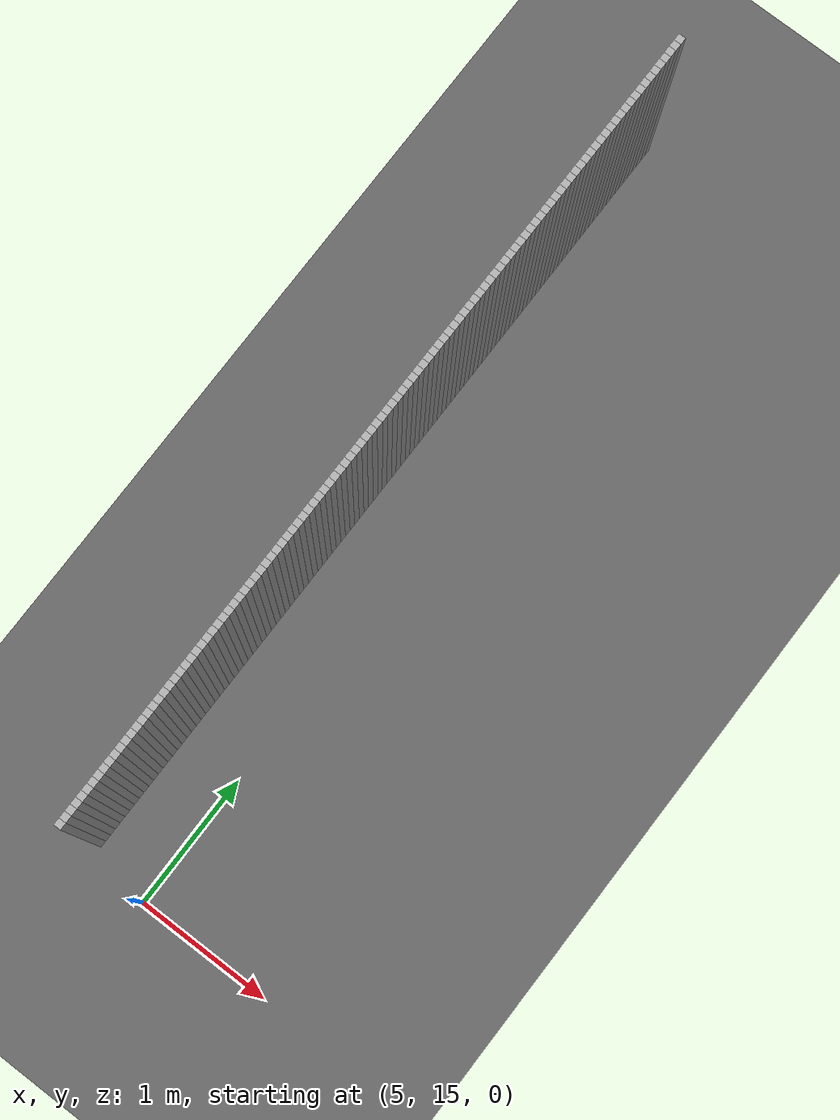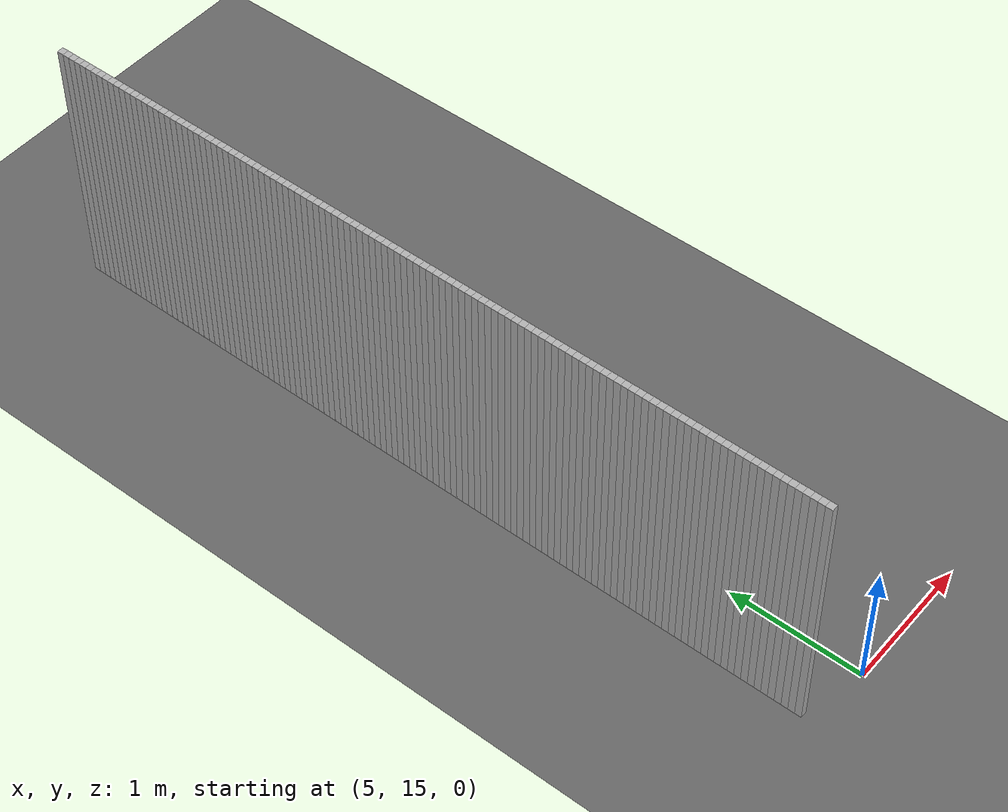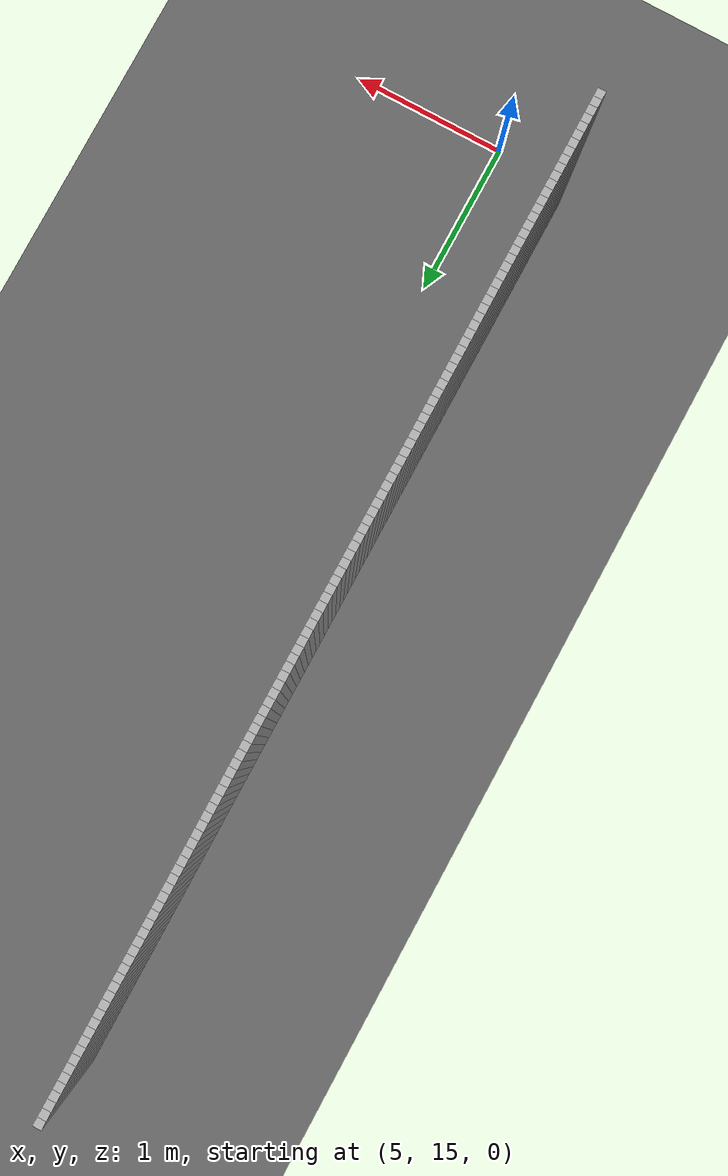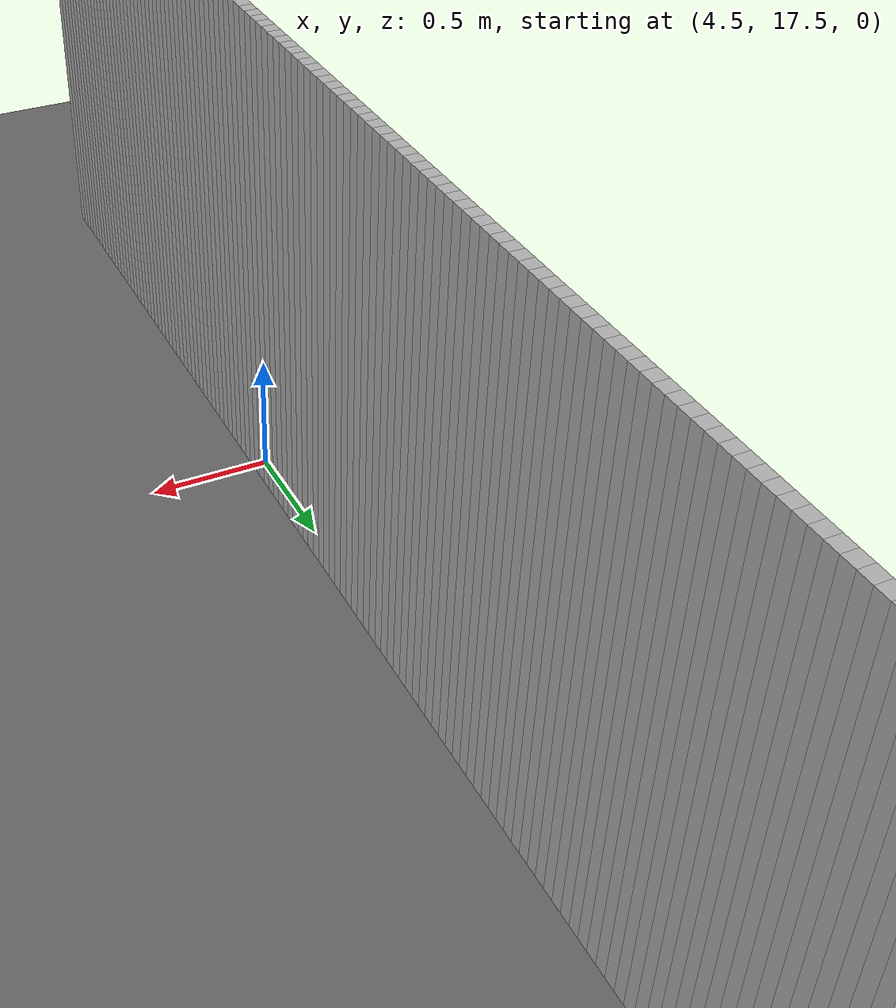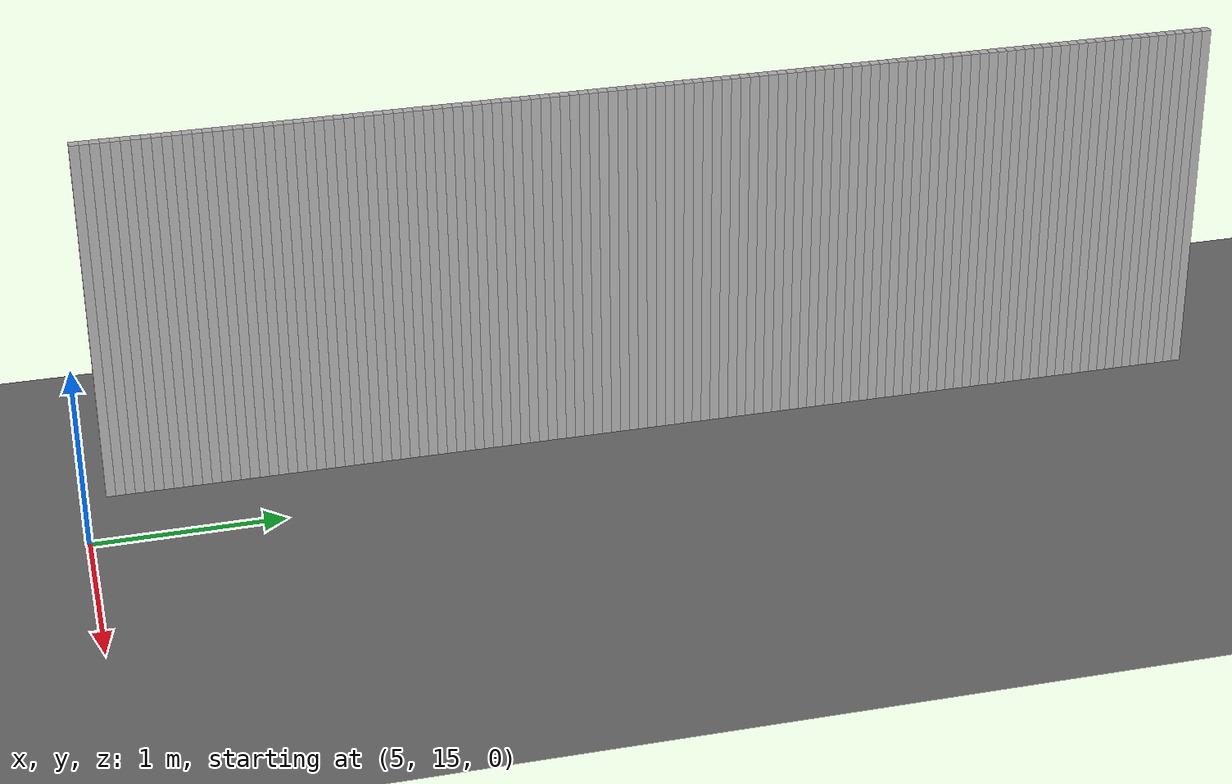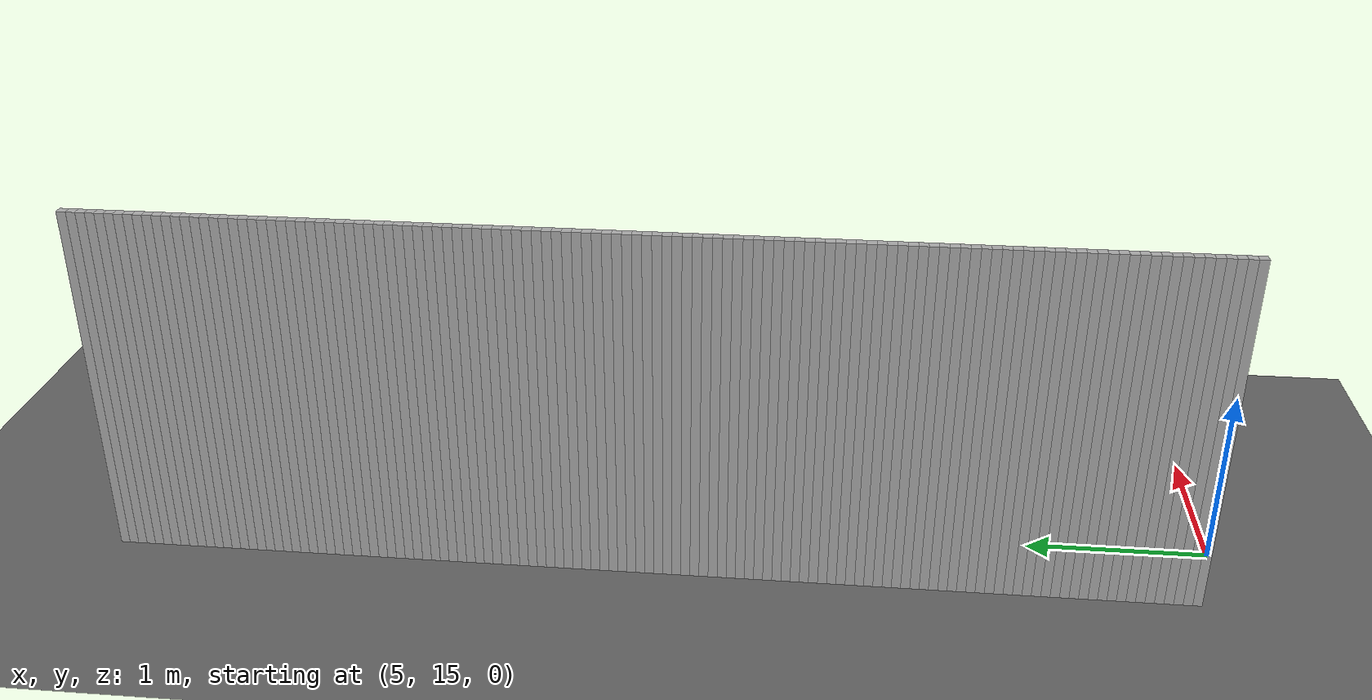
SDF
<sdf version="1.8">
 <world name="real_map">
  <model name="ground">
   <static>true</static>
   <link name="l">
    <collision name="c"><geometry><plane><normal>0 0 1</normal><size>100 100</size></plane></geometry></collision>
    <visual name="v">
     <geometry><plane><normal>0 0 1</normal><size>100 100</size></plane></geometry>
     <material><ambient>0.3 0.3 0.3 1</ambient><diffuse>0.4 0.4 0.4 1</diffuse></material>
    </visual>
   </link>
  </model>
  <model name="walls">
   <static>true</static>
   <link name="w2">
    <pose>4.534 21.092 1.000 0 0 0</pose>
    <collision name="c"><geometry><box><size>0.050 0.050 2.000</size></box></geometry></collision>
    <visual name="v">
     <geometry><box><size>0.050 0.050 2.000</size></box></geometry>
     <material><ambient>0.7 0.7 0.7 1</ambient><diffuse>0.7 0.7 0.7 1</diffuse></material>
    </visual>
   </link>
   <link name="w4">
    <pose>4.534 21.042 1.000 0 0 0</pose>
    <collision name="c"><geometry><box><size>0.050 0.050 2.000</size></box></geometry></collision>
    <visual name="v">
     <geometry><box><size>0.050 0.050 2.000</size></box></geometry>
     <material><ambient>0.7 0.7 0.7 1</ambient><diffuse>0.7 0.7 0.7 1</diffuse></material>
    </visual>
   </link>
   <link name="w6">
    <pose>4.534 20.992 1.000 0 0 0</pose>
    <collision name="c"><geometry><box><size>0.050 0.050 2.000</size></box></geometry></collision>
    <visual name="v">
     <geometry><box><size>0.050 0.050 2.000</size></box></geometry>
     <material><ambient>0.7 0.7 0.7 1</ambient><diffuse>0.7 0.7 0.7 1</diffuse></material>
    </visual>
   </link>
   <link name="w8">
    <pose>4.534 20.942 1.000 0 0 0</pose>
    <collision name="c"><geometry><box><size>0.050 0.050 2.000</size></box></geometry></collision>
    <visual name="v">
     <geometry><box><size>0.050 0.050 2.000</size></box></geometry>
     <material><ambient>0.7 0.7 0.7 1</ambient><diffuse>0.7 0.7 0.7 1</diffuse></material>
    </visual>
   </link>
   <link name="w10">
    <pose>4.534 20.892 1.000 0 0 0</pose>
    <collision name="c"><geometry><box><size>0.050 0.050 2.000</size></box></geometry></collision>
    <visual name="v">
     <geometry><box><size>0.050 0.050 2.000</size></box></geometry>
     <material><ambient>0.7 0.7 0.7 1</ambient><diffuse>0.7 0.7 0.7 1</diffuse></material>
    </visual>
   </link>
   <link name="w12">
    <pose>4.534 20.842 1.000 0 0 0</pose>
    <collision name="c"><geometry><box><size>0.050 0.050 2.000</size></box></geometry></collision>
    <visual name="v">
     <geometry><box><size>0.050 0.050 2.000</size></box></geometry>
     <material><ambient>0.7 0.7 0.7 1</ambient><diffuse>0.7 0.7 0.7 1</diffuse></material>
    </visual>
   </link>
   <link name="w14">
    <pose>4.534 20.792 1.000 0 0 0</pose>
    <collision name="c"><geometry><box><size>0.050 0.050 2.000</size></box></geometry></collision>
    <visual name="v">
     <geometry><box><size>0.050 0.050 2.000</size></box></geometry>
     <material><ambient>0.7 0.7 0.7 1</ambient><diffuse>0.7 0.7 0.7 1</diffuse></material>
    </visual>
   </link>
   <link name="w16">
    <pose>4.534 20.742 1.000 0 0 0</pose>
    <collision name="c"><geometry><box><size>0.050 0.050 2.000</size></box></geometry></collision>
    <visual name="v">
     <geometry><box><size>0.050 0.050 2.000</size></box></geometry>
     <material><ambient>0.7 0.7 0.7 1</ambient><diffuse>0.7 0.7 0.7 1</diffuse></material>
    </visual>
   </link>
   <link name="w18">
    <pose>4.534 20.692 1.000 0 0 0</pose>
    <collision name="c"><geometry><box><size>0.050 0.050 2.000</size></box></geometry></collision>
    <visual name="v">
     <geometry><box><size>0.050 0.050 2.000</size></box></geometry>
     <material><ambient>0.7 0.7 0.7 1</ambient><diffuse>0.7 0.7 0.7 1</diffuse></material>
    </visual>
   </link>
   <link name="w20">
    <pose>4.534 20.642 1.000 0 0 0</pose>
    <collision name="c"><geometry><box><size>0.050 0.050 2.000</size></box></geometry></collision>
    <visual name="v">
     <geometry><box><size>0.050 0.050 2.000</size></box></geometry>
     <material><ambient>0.7 0.7 0.7 1</ambient><diffuse>0.7 0.7 0.7 1</diffuse></material>
    </visual>
   </link>
   <link name="w22">
    <pose>4.534 20.592 1.000 0 0 0</pose>
    <collision name="c"><geometry><box><size>0.050 0.050 2.000</size></box></geometry></collision>
    <visual name="v">
     <geometry><box><size>0.050 0.050 2.000</size></box></geometry>
     <material><ambient>0.7 0.7 0.7 1</ambient><diffuse>0.7 0.7 0.7 1</diffuse></material>
    </visual>
   </link>
   <link name="w24">
    <pose>4.534 20.542 1.000 0 0 0</pose>
    <collision name="c"><geometry><box><size>0.050 0.050 2.000</size></box></geometry></collision>
    <visual name="v">
     <geometry><box><size>0.050 0.050 2.000</size></box></geometry>
     <material><ambient>0.7 0.7 0.7 1</ambient><diffuse>0.7 0.7 0.7 1</diffuse></material>
    </visual>
   </link>
   <link name="w26">
    <pose>4.534 20.492 1.000 0 0 0</pose>
    <collision name="c"><geometry><box><size>0.050 0.050 2.000</size></box></geometry></collision>
    <visual name="v">
     <geometry><box><size>0.050 0.050 2.000</size></box></geometry>
     <material><ambient>0.7 0.7 0.7 1</ambient><diffuse>0.7 0.7 0.7 1</diffuse></material>
    </visual>
   </link>
   <link name="w28">
    <pose>4.534 20.442 1.000 0 0 0</pose>
    <collision name="c"><geometry><box><size>0.050 0.050 2.000</size></box></geometry></collision>
    <visual name="v">
     <geometry><box><size>0.050 0.050 2.000</size></box></geometry>
     <material><ambient>0.7 0.7 0.7 1</ambient><diffuse>0.7 0.7 0.7 1</diffuse></material>
    </visual>
   </link>
   <link name="w30">
    <pose>4.534 20.392 1.000 0 0 0</pose>
    <collision name="c"><geometry><box><size>0.050 0.050 2.000</size></box></geometry></collision>
    <visual name="v">
     <geometry><box><size>0.050 0.050 2.000</size></box></geometry>
     <material><ambient>0.7 0.7 0.7 1</ambient><diffuse>0.7 0.7 0.7 1</diffuse></material>
    </visual>
   </link>
   <link name="w32">
    <pose>4.534 20.342 1.000 0 0 0</pose>
    <collision name="c"><geometry><box><size>0.050 0.050 2.000</size></box></geometry></collision>
    <visual name="v">
     <geometry><box><size>0.050 0.050 2.000</size></box></geometry>
     <material><ambient>0.7 0.7 0.7 1</ambient><diffuse>0.7 0.7 0.7 1</diffuse></material>
    </visual>
   </link>
   <link name="w34">
    <pose>4.534 20.292 1.000 0 0 0</pose>
    <collision name="c"><geometry><box><size>0.050 0.050 2.000</size></box></geometry></collision>
    <visual name="v">
     <geometry><box><size>0.050 0.050 2.000</size></box></geometry>
     <material><ambient>0.7 0.7 0.7 1</ambient><diffuse>0.7 0.7 0.7 1</diffuse></material>
    </visual>
   </link>
   <link name="w36">
    <pose>4.534 20.242 1.000 0 0 0</pose>
    <collision name="c"><geometry><box><size>0.050 0.050 2.000</size></box></geometry></collision>
    <visual name="v">
     <geometry><box><size>0.050 0.050 2.000</size></box></geometry>
     <material><ambient>0.7 0.7 0.7 1</ambient><diffuse>0.7 0.7 0.7 1</diffuse></material>
    </visual>
   </link>
   <link name="w38">
    <pose>4.534 20.192 1.000 0 0 0</pose>
    <collision name="c"><geometry><box><size>0.050 0.050 2.000</size></box></geometry></collision>
    <visual name="v">
     <geometry><box><size>0.050 0.050 2.000</size></box></geometry>
     <material><ambient>0.7 0.7 0.7 1</ambient><diffuse>0.7 0.7 0.7 1</diffuse></material>
    </visual>
   </link>
   <link name="w40">
    <pose>4.534 20.142 1.000 0 0 0</pose>
    <collision name="c"><geometry><box><size>0.050 0.050 2.000</size></box></geometry></collision>
    <visual name="v">
     <geometry><box><size>0.050 0.050 2.000</size></box></geometry>
     <material><ambient>0.7 0.7 0.7 1</ambient><diffuse>0.7 0.7 0.7 1</diffuse></material>
    </visual>
   </link>
   <link name="w42">
    <pose>4.534 20.092 1.000 0 0 0</pose>
    <collision name="c"><geometry><box><size>0.050 0.050 2.000</size></box></geometry></collision>
    <visual name="v">
     <geometry><box><size>0.050 0.050 2.000</size></box></geometry>
     <material><ambient>0.7 0.7 0.7 1</ambient><diffuse>0.7 0.7 0.7 1</diffuse></material>
    </visual>
   </link>
   <link name="w44">
    <pose>4.534 20.042 1.000 0 0 0</pose>
    <collision name="c"><geometry><box><size>0.050 0.050 2.000</size></box></geometry></collision>
    <visual name="v">
     <geometry><box><size>0.050 0.050 2.000</size></box></geometry>
     <material><ambient>0.7 0.7 0.7 1</ambient><diffuse>0.7 0.7 0.7 1</diffuse></material>
    </visual>
   </link>
   <link name="w46">
    <pose>4.534 19.992 1.000 0 0 0</pose>
    <collision name="c"><geometry><box><size>0.050 0.050 2.000</size></box></geometry></collision>
    <visual name="v">
     <geometry><box><size>0.050 0.050 2.000</size></box></geometry>
     <material><ambient>0.7 0.7 0.7 1</ambient><diffuse>0.7 0.7 0.7 1</diffuse></material>
    </visual>
   </link>
   <link name="w48">
    <pose>4.534 19.942 1.000 0 0 0</pose>
    <collision name="c"><geometry><box><size>0.050 0.050 2.000</size></box></geometry></collision>
    <visual name="v">
     <geometry><box><size>0.050 0.050 2.000</size></box></geometry>
     <material><ambient>0.7 0.7 0.7 1</ambient><diffuse>0.7 0.7 0.7 1</diffuse></material>
    </visual>
   </link>
   <link name="w50">
    <pose>4.534 19.892 1.000 0 0 0</pose>
    <collision name="c"><geometry><box><size>0.050 0.050 2.000</size></box></geometry></collision>
    <visual name="v">
     <geometry><box><size>0.050 0.050 2.000</size></box></geometry>
     <material><ambient>0.7 0.7 0.7 1</ambient><diffuse>0.7 0.7 0.7 1</diffuse></material>
    </visual>
   </link>
   <link name="w52">
    <pose>4.534 19.842 1.000 0 0 0</pose>
    <collision name="c"><geometry><box><size>0.050 0.050 2.000</size></box></geometry></collision>
    <visual name="v">
     <geometry><box><size>0.050 0.050 2.000</size></box></geometry>
     <material><ambient>0.7 0.7 0.7 1</ambient><diffuse>0.7 0.7 0.7 1</diffuse></material>
    </visual>
   </link>
   <link name="w54">
    <pose>4.534 19.792 1.000 0 0 0</pose>
    <collision name="c"><geometry><box><size>0.050 0.050 2.000</size></box></geometry></collision>
    <visual name="v">
     <geometry><box><size>0.050 0.050 2.000</size></box></geometry>
     <material><ambient>0.7 0.7 0.7 1</ambient><diffuse>0.7 0.7 0.7 1</diffuse></material>
    </visual>
   </link>
   <link name="w56">
    <pose>4.534 19.742 1.000 0 0 0</pose>
    <collision name="c"><geometry><box><size>0.050 0.050 2.000</size></box></geometry></collision>
    <visual name="v">
     <geometry><box><size>0.050 0.050 2.000</size></box></geometry>
     <material><ambient>0.7 0.7 0.7 1</ambient><diffuse>0.7 0.7 0.7 1</diffuse></material>
    </visual>
   </link>
   <link name="w58">
    <pose>4.534 19.692 1.000 0 0 0</pose>
    <collision name="c"><geometry><box><size>0.050 0.050 2.000</size></box></geometry></collision>
    <visual name="v">
     <geometry><box><size>0.050 0.050 2.000</size></box></geometry>
     <material><ambient>0.7 0.7 0.7 1</ambient><diffuse>0.7 0.7 0.7 1</diffuse></material>
    </visual>
   </link>
   <link name="w60">
    <pose>4.534 19.642 1.000 0 0 0</pose>
    <collision name="c"><geometry><box><size>0.050 0.050 2.000</size></box></geometry></collision>
    <visual name="v">
     <geometry><box><size>0.050 0.050 2.000</size></box></geometry>
     <material><ambient>0.7 0.7 0.7 1</ambient><diffuse>0.7 0.7 0.7 1</diffuse></material>
    </visual>
   </link>
   <link name="w62">
    <pose>4.534 19.592 1.000 0 0 0</pose>
    <collision name="c"><geometry><box><size>0.050 0.050 2.000</size></box></geometry></collision>
    <visual name="v">
     <geometry><box><size>0.050 0.050 2.000</size></box></geometry>
     <material><ambient>0.7 0.7 0.7 1</ambient><diffuse>0.7 0.7 0.7 1</diffuse></material>
    </visual>
   </link>
   <link name="w64">
    <pose>4.534 19.542 1.000 0 0 0</pose>
    <collision name="c"><geometry><box><size>0.050 0.050 2.000</size></box></geometry></collision>
    <visual name="v">
     <geometry><box><size>0.050 0.050 2.000</size></box></geometry>
     <material><ambient>0.7 0.7 0.7 1</ambient><diffuse>0.7 0.7 0.7 1</diffuse></material>
    </visual>
   </link>
   <link name="w66">
    <pose>4.534 19.492 1.000 0 0 0</pose>
    <collision name="c"><geometry><box><size>0.050 0.050 2.000</size></box></geometry></collision>
    <visual name="v">
     <geometry><box><size>0.050 0.050 2.000</size></box></geometry>
     <material><ambient>0.7 0.7 0.7 1</ambient><diffuse>0.7 0.7 0.7 1</diffuse></material>
    </visual>
   </link>
   <link name="w68">
    <pose>4.534 19.442 1.000 0 0 0</pose>
    <collision name="c"><geometry><box><size>0.050 0.050 2.000</size></box></geometry></collision>
    <visual name="v">
     <geometry><box><size>0.050 0.050 2.000</size></box></geometry>
     <material><ambient>0.7 0.7 0.7 1</ambient><diffuse>0.7 0.7 0.7 1</diffuse></material>
    </visual>
   </link>
   <link name="w70">
    <pose>4.534 19.392 1.000 0 0 0</pose>
    <collision name="c"><geometry><box><size>0.050 0.050 2.000</size></box></geometry></collision>
    <visual name="v">
     <geometry><box><size>0.050 0.050 2.000</size></box></geometry>
     <material><ambient>0.7 0.7 0.7 1</ambient><diffuse>0.7 0.7 0.7 1</diffuse></material>
    </visual>
   </link>
   <link name="w72">
    <pose>4.534 19.342 1.000 0 0 0</pose>
    <collision name="c"><geometry><box><size>0.050 0.050 2.000</size></box></geometry></collision>
    <visual name="v">
     <geometry><box><size>0.050 0.050 2.000</size></box></geometry>
     <material><ambient>0.7 0.7 0.7 1</ambient><diffuse>0.7 0.7 0.7 1</diffuse></material>
    </visual>
   </link>
   <link name="w74">
    <pose>4.534 19.292 1.000 0 0 0</pose>
    <collision name="c"><geometry><box><size>0.050 0.050 2.000</size></box></geometry></collision>
    <visual name="v">
     <geometry><box><size>0.050 0.050 2.000</size></box></geometry>
     <material><ambient>0.7 0.7 0.7 1</ambient><diffuse>0.7 0.7 0.7 1</diffuse></material>
    </visual>
   </link>
   <link name="w76">
    <pose>4.534 19.242 1.000 0 0 0</pose>
    <collision name="c"><geometry><box><size>0.050 0.050 2.000</size></box></geometry></collision>
    <visual name="v">
     <geometry><box><size>0.050 0.050 2.000</size></box></geometry>
     <material><ambient>0.7 0.7 0.7 1</ambient><diffuse>0.7 0.7 0.7 1</diffuse></material>
    </visual>
   </link>
   <link name="w78">
    <pose>4.534 19.192 1.000 0 0 0</pose>
    <collision name="c"><geometry><box><size>0.050 0.050 2.000</size></box></geometry></collision>
    <visual name="v">
     <geometry><box><size>0.050 0.050 2.000</size></box></geometry>
     <material><ambient>0.7 0.7 0.7 1</ambient><diffuse>0.7 0.7 0.7 1</diffuse></material>
    </visual>
   </link>
   <link name="w80">
    <pose>4.534 19.142 1.000 0 0 0</pose>
    <collision name="c"><geometry><box><size>0.050 0.050 2.000</size></box></geometry></collision>
    <visual name="v">
     <geometry><box><size>0.050 0.050 2.000</size></box></geometry>
     <material><ambient>0.7 0.7 0.7 1</ambient><diffuse>0.7 0.7 0.7 1</diffuse></material>
    </visual>
   </link>
   <link name="w82">
    <pose>4.534 19.092 1.000 0 0 0</pose>
    <collision name="c"><geometry><box><size>0.050 0.050 2.000</size></box></geometry></collision>
    <visual name="v">
     <geometry><box><size>0.050 0.050 2.000</size></box></geometry>
     <material><ambient>0.7 0.7 0.7 1</ambient><diffuse>0.7 0.7 0.7 1</diffuse></material>
    </visual>
   </link>
   <link name="w84">
    <pose>4.534 19.042 1.000 0 0 0</pose>
    <collision name="c"><geometry><box><size>0.050 0.050 2.000</size></box></geometry></collision>
    <visual name="v">
     <geometry><box><size>0.050 0.050 2.000</size></box></geometry>
     <material><ambient>0.7 0.7 0.7 1</ambient><diffuse>0.7 0.7 0.7 1</diffuse></material>
    </visual>
   </link>
   <link name="w86">
    <pose>4.534 18.992 1.000 0 0 0</pose>
    <collision name="c"><geometry><box><size>0.050 0.050 2.000</size></box></geometry></collision>
    <visual name="v">
     <geometry><box><size>0.050 0.050 2.000</size></box></geometry>
     <material><ambient>0.7 0.7 0.7 1</ambient><diffuse>0.7 0.7 0.7 1</diffuse></material>
    </visual>
   </link>
   <link name="w88">
    <pose>4.534 18.942 1.000 0 0 0</pose>
    <collision name="c"><geometry><box><size>0.050 0.050 2.000</size></box></geometry></collision>
    <visual name="v">
     <geometry><box><size>0.050 0.050 2.000</size></box></geometry>
     <material><ambient>0.7 0.7 0.7 1</ambient><diffuse>0.7 0.7 0.7 1</diffuse></material>
    </visual>
   </link>
   <link name="w90">
    <pose>4.534 18.892 1.000 0 0 0</pose>
    <collision name="c"><geometry><box><size>0.050 0.050 2.000</size></box></geometry></collision>
    <visual name="v">
     <geometry><box><size>0.050 0.050 2.000</size></box></geometry>
     <material><ambient>0.7 0.7 0.7 1</ambient><diffuse>0.7 0.7 0.7 1</diffuse></material>
    </visual>
   </link>
   <link name="w92">
    <pose>4.534 18.842 1.000 0 0 0</pose>
    <collision name="c"><geometry><box><size>0.050 0.050 2.000</size></box></geometry></collision>
    <visual name="v">
     <geometry><box><size>0.050 0.050 2.000</size></box></geometry>
     <material><ambient>0.7 0.7 0.7 1</ambient><diffuse>0.7 0.7 0.7 1</diffuse></material>
    </visual>
   </link>
   <link name="w94">
    <pose>4.534 18.792 1.000 0 0 0</pose>
    <collision name="c"><geometry><box><size>0.050 0.050 2.000</size></box></geometry></collision>
    <visual name="v">
     <geometry><box><size>0.050 0.050 2.000</size></box></geometry>
     <material><ambient>0.7 0.7 0.7 1</ambient><diffuse>0.7 0.7 0.7 1</diffuse></material>
    </visual>
   </link>
   <link name="w96">
    <pose>4.534 18.742 1.000 0 0 0</pose>
    <collision name="c"><geometry><box><size>0.050 0.050 2.000</size></box></geometry></collision>
    <visual name="v">
     <geometry><box><size>0.050 0.050 2.000</size></box></geometry>
     <material><ambient>0.7 0.7 0.7 1</ambient><diffuse>0.7 0.7 0.7 1</diffuse></material>
    </visual>
   </link>
   <link name="w98">
    <pose>4.534 18.692 1.000 0 0 0</pose>
    <collision name="c"><geometry><box><size>0.050 0.050 2.000</size></box></geometry></collision>
    <visual name="v">
     <geometry><box><size>0.050 0.050 2.000</size></box></geometry>
     <material><ambient>0.7 0.7 0.7 1</ambient><diffuse>0.7 0.7 0.7 1</diffuse></material>
    </visual>
   </link>
   <link name="w100">
    <pose>4.534 18.642 1.000 0 0 0</pose>
    <collision name="c"><geometry><box><size>0.050 0.050 2.000</size></box></geometry></collision>
    <visual name="v">
     <geometry><box><size>0.050 0.050 2.000</size></box></geometry>
     <material><ambient>0.7 0.7 0.7 1</ambient><diffuse>0.7 0.7 0.7 1</diffuse></material>
    </visual>
   </link>
   <link name="w102">
    <pose>4.534 18.592 1.000 0 0 0</pose>
    <collision name="c"><geometry><box><size>0.050 0.050 2.000</size></box></geometry></collision>
    <visual name="v">
     <geometry><box><size>0.050 0.050 2.000</size></box></geometry>
     <material><ambient>0.7 0.7 0.7 1</ambient><diffuse>0.7 0.7 0.7 1</diffuse></material>
    </visual>
   </link>
   <link name="w104">
    <pose>4.534 18.542 1.000 0 0 0</pose>
    <collision name="c"><geometry><box><size>0.050 0.050 2.000</size></box></geometry></collision>
    <visual name="v">
     <geometry><box><size>0.050 0.050 2.000</size></box></geometry>
     <material><ambient>0.7 0.7 0.7 1</ambient><diffuse>0.7 0.7 0.7 1</diffuse></material>
    </visual>
   </link>
   <link name="w106">
    <pose>4.534 18.492 1.000 0 0 0</pose>
    <collision name="c"><geometry><box><size>0.050 0.050 2.000</size></box></geometry></collision>
    <visual name="v">
     <geometry><box><size>0.050 0.050 2.000</size></box></geometry>
     <material><ambient>0.7 0.7 0.7 1</ambient><diffuse>0.7 0.7 0.7 1</diffuse></material>
    </visual>
   </link>
   <link name="w108">
    <pose>4.534 18.442 1.000 0 0 0</pose>
    <collision name="c"><geometry><box><size>0.050 0.050 2.000</size></box></geometry></collision>
    <visual name="v">
     <geometry><box><size>0.050 0.050 2.000</size></box></geometry>
     <material><ambient>0.7 0.7 0.7 1</ambient><diffuse>0.7 0.7 0.7 1</diffuse></material>
    </visual>
   </link>
   <link name="w110">
    <pose>4.534 18.392 1.000 0 0 0</pose>
    <collision name="c"><geometry><box><size>0.050 0.050 2.000</size></box></geometry></collision>
    <visual name="v">
     <geometry><box><size>0.050 0.050 2.000</size></box></geometry>
     <material><ambient>0.7 0.7 0.7 1</ambient><diffuse>0.7 0.7 0.7 1</diffuse></material>
    </visual>
   </link>
   <link name="w112">
    <pose>4.534 18.342 1.000 0 0 0</pose>
    <collision name="c"><geometry><box><size>0.050 0.050 2.000</size></box></geometry></collision>
    <visual name="v">
     <geometry><box><size>0.050 0.050 2.000</size></box></geometry>
     <material><ambient>0.7 0.7 0.7 1</ambient><diffuse>0.7 0.7 0.7 1</diffuse></material>
    </visual>
   </link>
   <link name="w114">
    <pose>4.534 18.292 1.000 0 0 0</pose>
    <collision name="c"><geometry><box><size>0.050 0.050 2.000</size></box></geometry></collision>
    <visual name="v">
     <geometry><box><size>0.050 0.050 2.000</size></box></geometry>
     <material><ambient>0.7 0.7 0.7 1</ambient><diffuse>0.7 0.7 0.7 1</diffuse></material>
    </visual>
   </link>
   <link name="w116">
    <pose>4.534 18.242 1.000 0 0 0</pose>
    <collision name="c"><geometry><box><size>0.050 0.050 2.000</size></box></geometry></collision>
    <visual name="v">
     <geometry><box><size>0.050 0.050 2.000</size></box></geometry>
     <material><ambient>0.7 0.7 0.7 1</ambient><diffuse>0.7 0.7 0.7 1</diffuse></material>
    </visual>
   </link>
   <link name="w118">
    <pose>4.534 18.192 1.000 0 0 0</pose>
    <collision name="c"><geometry><box><size>0.050 0.050 2.000</size></box></geometry></collision>
    <visual name="v">
     <geometry><box><size>0.050 0.050 2.000</size></box></geometry>
     <material><ambient>0.7 0.7 0.7 1</ambient><diffuse>0.7 0.7 0.7 1</diffuse></material>
    </visual>
   </link>
   <link name="w120">
    <pose>4.534 18.142 1.000 0 0 0</pose>
    <collision name="c"><geometry><box><size>0.050 0.050 2.000</size></box></geometry></collision>
    <visual name="v">
     <geometry><box><size>0.050 0.050 2.000</size></box></geometry>
     <material><ambient>0.7 0.7 0.7 1</ambient><diffuse>0.7 0.7 0.7 1</diffuse></material>
    </visual>
   </link>
   <link name="w122">
    <pose>4.534 18.092 1.000 0 0 0</pose>
    <collision name="c"><geometry><box><size>0.050 0.050 2.000</size></box></geometry></collision>
    <visual name="v">
     <geometry><box><size>0.050 0.050 2.000</size></box></geometry>
     <material><ambient>0.7 0.7 0.7 1</ambient><diffuse>0.7 0.7 0.7 1</diffuse></material>
    </visual>
   </link>
   <link name="w124">
    <pose>4.534 18.042 1.000 0 0 0</pose>
    <collision name="c"><geometry><box><size>0.050 0.050 2.000</size></box></geometry></collision>
    <visual name="v">
     <geometry><box><size>0.050 0.050 2.000</size></box></geometry>
     <material><ambient>0.7 0.7 0.7 1</ambient><diffuse>0.7 0.7 0.7 1</diffuse></material>
    </visual>
   </link>
   <link name="w126">
    <pose>4.534 17.992 1.000 0 0 0</pose>
    <collision name="c"><geometry><box><size>0.050 0.050 2.000</size></box></geometry></collision>
    <visual name="v">
     <geometry><box><size>0.050 0.050 2.000</size></box></geometry>
     <material><ambient>0.7 0.7 0.7 1</ambient><diffuse>0.7 0.7 0.7 1</diffuse></material>
    </visual>
   </link>
   <link name="w128">
    <pose>4.534 17.942 1.000 0 0 0</pose>
    <collision name="c"><geometry><box><size>0.050 0.050 2.000</size></box></geometry></collision>
    <visual name="v">
     <geometry><box><size>0.050 0.050 2.000</size></box></geometry>
     <material><ambient>0.7 0.7 0.7 1</ambient><diffuse>0.7 0.7 0.7 1</diffuse></material>
    </visual>
   </link>
   <link name="w130">
    <pose>4.534 17.892 1.000 0 0 0</pose>
    <collision name="c"><geometry><box><size>0.050 0.050 2.000</size></box></geometry></collision>
    <visual name="v">
     <geometry><box><size>0.050 0.050 2.000</size></box></geometry>
     <material><ambient>0.7 0.7 0.7 1</ambient><diffuse>0.7 0.7 0.7 1</diffuse></material>
    </visual>
   </link>
   <link name="w132">
    <pose>4.534 17.842 1.000 0 0 0</pose>
    <collision name="c"><geometry><box><size>0.050 0.050 2.000</size></box></geometry></collision>
    <visual name="v">
     <geometry><box><size>0.050 0.050 2.000</size></box></geometry>
     <material><ambient>0.7 0.7 0.7 1</ambient><diffuse>0.7 0.7 0.7 1</diffuse></material>
    </visual>
   </link>
   <link name="w134">
    <pose>4.534 17.792 1.000 0 0 0</pose>
    <collision name="c"><geometry><box><size>0.050 0.050 2.000</size></box></geometry></collision>
    <visual name="v">
     <geometry><box><size>0.050 0.050 2.000</size></box></geometry>
     <material><ambient>0.7 0.7 0.7 1</ambient><diffuse>0.7 0.7 0.7 1</diffuse></material>
    </visual>
   </link>
   <link name="w136">
    <pose>4.534 17.742 1.000 0 0 0</pose>
    <collision name="c"><geometry><box><size>0.050 0.050 2.000</size></box></geometry></collision>
    <visual name="v">
     <geometry><box><size>0.050 0.050 2.000</size></box></geometry>
     <material><ambient>0.7 0.7 0.7 1</ambient><diffuse>0.7 0.7 0.7 1</diffuse></material>
    </visual>
   </link>
   <link name="w138">
    <pose>4.534 17.692 1.000 0 0 0</pose>
    <collision name="c"><geometry><box><size>0.050 0.050 2.000</size></box></geometry></collision>
    <visual name="v">
     <geometry><box><size>0.050 0.050 2.000</size></box></geometry>
     <material><ambient>0.7 0.7 0.7 1</ambient><diffuse>0.7 0.7 0.7 1</diffuse></material>
    </visual>
   </link>
   <link name="w140">
    <pose>4.534 17.642 1.000 0 0 0</pose>
    <collision name="c"><geometry><box><size>0.050 0.050 2.000</size></box></geometry></collision>
    <visual name="v">
     <geometry><box><size>0.050 0.050 2.000</size></box></geometry>
     <material><ambient>0.7 0.7 0.7 1</ambient><diffuse>0.7 0.7 0.7 1</diffuse></material>
    </visual>
   </link>
   <link name="w142">
    <pose>4.534 17.592 1.000 0 0 0</pose>
    <collision name="c"><geometry><box><size>0.050 0.050 2.000</size></box></geometry></collision>
    <visual name="v">
     <geometry><box><size>0.050 0.050 2.000</size></box></geometry>
     <material><ambient>0.7 0.7 0.7 1</ambient><diffuse>0.7 0.7 0.7 1</diffuse></material>
    </visual>
   </link>
   <link name="w144">
    <pose>4.534 17.542 1.000 0 0 0</pose>
    <collision name="c"><geometry><box><size>0.050 0.050 2.000</size></box></geometry></collision>
    <visual name="v">
     <geometry><box><size>0.050 0.050 2.000</size></box></geometry>
     <material><ambient>0.7 0.7 0.7 1</ambient><diffuse>0.7 0.7 0.7 1</diffuse></material>
    </visual>
   </link>
   <link name="w146">
    <pose>4.534 17.492 1.000 0 0 0</pose>
    <collision name="c"><geometry><box><size>0.050 0.050 2.000</size></box></geometry></collision>
    <visual name="v">
     <geometry><box><size>0.050 0.050 2.000</size></box></geometry>
     <material><ambient>0.7 0.7 0.7 1</ambient><diffuse>0.7 0.7 0.7 1</diffuse></material>
    </visual>
   </link>
   <link name="w148">
    <pose>4.534 17.442 1.000 0 0 0</pose>
    <collision name="c"><geometry><box><size>0.050 0.050 2.000</size></box></geometry></collision>
    <visual name="v">
     <geometry><box><size>0.050 0.050 2.000</size></box></geometry>
     <material><ambient>0.7 0.7 0.7 1</ambient><diffuse>0.7 0.7 0.7 1</diffuse></material>
    </visual>
   </link>
   <link name="w150">
    <pose>4.534 17.392 1.000 0 0 0</pose>
    <collision name="c"><geometry><box><size>0.050 0.050 2.000</size></box></geometry></collision>
    <visual name="v">
     <geometry><box><size>0.050 0.050 2.000</size></box></geometry>
     <material><ambient>0.7 0.7 0.7 1</ambient><diffuse>0.7 0.7 0.7 1</diffuse></material>
    </visual>
   </link>
   <link name="w152">
    <pose>4.534 17.342 1.000 0 0 0</pose>
    <collision name="c"><geometry><box><size>0.050 0.050 2.000</size></box></geometry></collision>
    <visual name="v">
     <geometry><box><size>0.050 0.050 2.000</size></box></geometry>
     <material><ambient>0.7 0.7 0.7 1</ambient><diffuse>0.7 0.7 0.7 1</diffuse></material>
    </visual>
   </link>
   <link name="w154">
    <pose>4.534 17.292 1.000 0 0 0</pose>
    <collision name="c"><geometry><box><size>0.050 0.050 2.000</size></box></geometry></collision>
    <visual name="v">
     <geometry><box><size>0.050 0.050 2.000</size></box></geometry>
     <material><ambient>0.7 0.7 0.7 1</ambient><diffuse>0.7 0.7 0.7 1</diffuse></material>
    </visual>
   </link>
   <link name="w156">
    <pose>4.534 17.242 1.000 0 0 0</pose>
    <collision name="c"><geometry><box><size>0.050 0.050 2.000</size></box></geometry></collision>
    <visual name="v">
     <geometry><box><size>0.050 0.050 2.000</size></box></geometry>
     <material><ambient>0.7 0.7 0.7 1</ambient><diffuse>0.7 0.7 0.7 1</diffuse></material>
    </visual>
   </link>
   <link name="w158">
    <pose>4.534 17.192 1.000 0 0 0</pose>
    <collision name="c"><geometry><box><size>0.050 0.050 2.000</size></box></geometry></collision>
    <visual name="v">
     <geometry><box><size>0.050 0.050 2.000</size></box></geometry>
     <material><ambient>0.7 0.7 0.7 1</ambient><diffuse>0.7 0.7 0.7 1</diffuse></material>
    </visual>
   </link>
   <link name="w160">
    <pose>4.534 17.142 1.000 0 0 0</pose>
    <collision name="c"><geometry><box><size>0.050 0.050 2.000</size></box></geometry></collision>
    <visual name="v">
     <geometry><box><size>0.050 0.050 2.000</size></box></geometry>
     <material><ambient>0.7 0.7 0.7 1</ambient><diffuse>0.7 0.7 0.7 1</diffuse></material>
    </visual>
   </link>
   <link name="w162">
    <pose>4.534 17.092 1.000 0 0 0</pose>
    <collision name="c"><geometry><box><size>0.050 0.050 2.000</size></box></geometry></collision>
    <visual name="v">
     <geometry><box><size>0.050 0.050 2.000</size></box></geometry>
     <material><ambient>0.7 0.7 0.7 1</ambient><diffuse>0.7 0.7 0.7 1</diffuse></material>
    </visual>
   </link>
   <link name="w164">
    <pose>4.534 17.042 1.000 0 0 0</pose>
    <collision name="c"><geometry><box><size>0.050 0.050 2.000</size></box></geometry></collision>
    <visual name="v">
     <geometry><box><size>0.050 0.050 2.000</size></box></geometry>
     <material><ambient>0.7 0.7 0.7 1</ambient><diffuse>0.7 0.7 0.7 1</diffuse></material>
    </visual>
   </link>
   <link name="w166">
    <pose>4.534 16.992 1.000 0 0 0</pose>
    <collision name="c"><geometry><box><size>0.050 0.050 2.000</size></box></geometry></collision>
    <visual name="v">
     <geometry><box><size>0.050 0.050 2.000</size></box></geometry>
     <material><ambient>0.7 0.7 0.7 1</ambient><diffuse>0.7 0.7 0.7 1</diffuse></material>
    </visual>
   </link>
   <link name="w168">
    <pose>4.534 16.942 1.000 0 0 0</pose>
    <collision name="c"><geometry><box><size>0.050 0.050 2.000</size></box></geometry></collision>
    <visual name="v">
     <geometry><box><size>0.050 0.050 2.000</size></box></geometry>
     <material><ambient>0.7 0.7 0.7 1</ambient><diffuse>0.7 0.7 0.7 1</diffuse></material>
    </visual>
   </link>
   <link name="w170">
    <pose>4.534 16.892 1.000 0 0 0</pose>
    <collision name="c"><geometry><box><size>0.050 0.050 2.000</size></box></geometry></collision>
    <visual name="v">
     <geometry><box><size>0.050 0.050 2.000</size></box></geometry>
     <material><ambient>0.7 0.7 0.7 1</ambient><diffuse>0.7 0.7 0.7 1</diffuse></material>
    </visual>
   </link>
   <link name="w172">
    <pose>4.534 16.842 1.000 0 0 0</pose>
    <collision name="c"><geometry><box><size>0.050 0.050 2.000</size></box></geometry></collision>
    <visual name="v">
     <geometry><box><size>0.050 0.050 2.000</size></box></geometry>
     <material><ambient>0.7 0.7 0.7 1</ambient><diffuse>0.7 0.7 0.7 1</diffuse></material>
    </visual>
   </link>
   <link name="w174">
    <pose>4.534 16.792 1.000 0 0 0</pose>
    <collision name="c"><geometry><box><size>0.050 0.050 2.000</size></box></geometry></collision>
    <visual name="v">
     <geometry><box><size>0.050 0.050 2.000</size></box></geometry>
     <material><ambient>0.7 0.7 0.7 1</ambient><diffuse>0.7 0.7 0.7 1</diffuse></material>
    </visual>
   </link>
   <link name="w176">
    <pose>4.534 16.742 1.000 0 0 0</pose>
    <collision name="c"><geometry><box><size>0.050 0.050 2.000</size></box></geometry></collision>
    <visual name="v">
     <geometry><box><size>0.050 0.050 2.000</size></box></geometry>
     <material><ambient>0.7 0.7 0.7 1</ambient><diffuse>0.7 0.7 0.7 1</diffuse></material>
    </visual>
   </link>
   <link name="w178">
    <pose>4.534 16.692 1.000 0 0 0</pose>
    <collision name="c"><geometry><box><size>0.050 0.050 2.000</size></box></geometry></collision>
    <visual name="v">
     <geometry><box><size>0.050 0.050 2.000</size></box></geometry>
     <material><ambient>0.7 0.7 0.7 1</ambient><diffuse>0.7 0.7 0.7 1</diffuse></material>
    </visual>
   </link>
   <link name="w180">
    <pose>4.534 16.642 1.000 0 0 0</pose>
    <collision name="c"><geometry><box><size>0.050 0.050 2.000</size></box></geometry></collision>
    <visual name="v">
     <geometry><box><size>0.050 0.050 2.000</size></box></geometry>
     <material><ambient>0.7 0.7 0.7 1</ambient><diffuse>0.7 0.7 0.7 1</diffuse></material>
    </visual>
   </link>
   <link name="w182">
    <pose>4.534 16.592 1.000 0 0 0</pose>
    <collision name="c"><geometry><box><size>0.050 0.050 2.000</size></box></geometry></collision>
    <visual name="v">
     <geometry><box><size>0.050 0.050 2.000</size></box></geometry>
     <material><ambient>0.7 0.7 0.7 1</ambient><diffuse>0.7 0.7 0.7 1</diffuse></material>
    </visual>
   </link>
   <link name="w184">
    <pose>4.534 16.542 1.000 0 0 0</pose>
    <collision name="c"><geometry><box><size>0.050 0.050 2.000</size></box></geometry></collision>
    <visual name="v">
     <geometry><box><size>0.050 0.050 2.000</size></box></geometry>
     <material><ambient>0.7 0.7 0.7 1</ambient><diffuse>0.7 0.7 0.7 1</diffuse></material>
    </visual>
   </link>
   <link name="w186">
    <pose>4.534 16.492 1.000 0 0 0</pose>
    <collision name="c"><geometry><box><size>0.050 0.050 2.000</size></box></geometry></collision>
    <visual name="v">
     <geometry><box><size>0.050 0.050 2.000</size></box></geometry>
     <material><ambient>0.7 0.7 0.7 1</ambient><diffuse>0.7 0.7 0.7 1</diffuse></material>
    </visual>
   </link>
   <link name="w188">
    <pose>4.534 16.442 1.000 0 0 0</pose>
    <collision name="c"><geometry><box><size>0.050 0.050 2.000</size></box></geometry></collision>
    <visual name="v">
     <geometry><box><size>0.050 0.050 2.000</size></box></geometry>
     <material><ambient>0.7 0.7 0.7 1</ambient><diffuse>0.7 0.7 0.7 1</diffuse></material>
    </visual>
   </link>
   <link name="w190">
    <pose>4.534 16.392 1.000 0 0 0</pose>
    <collision name="c"><geometry><box><size>0.050 0.050 2.000</size></box></geometry></collision>
    <visual name="v">
     <geometry><box><size>0.050 0.050 2.000</size></box></geometry>
     <material><ambient>0.7 0.7 0.7 1</ambient><diffuse>0.7 0.7 0.7 1</diffuse></material>
    </visual>
   </link>
   <link name="w192">
    <pose>4.534 16.342 1.000 0 0 0</pose>
    <collision name="c"><geometry><box><size>0.050 0.050 2.000</size></box></geometry></collision>
    <visual name="v">
     <geometry><box><size>0.050 0.050 2.000</size></box></geometry>
     <material><ambient>0.7 0.7 0.7 1</ambient><diffuse>0.7 0.7 0.7 1</diffuse></material>
    </visual>
   </link>
   <link name="w194">
    <pose>4.534 16.292 1.000 0 0 0</pose>
    <collision name="c"><geometry><box><size>0.050 0.050 2.000</size></box></geometry></collision>
    <visual name="v">
     <geometry><box><size>0.050 0.050 2.000</size></box></geometry>
     <material><ambient>0.7 0.7 0.7 1</ambient><diffuse>0.7 0.7 0.7 1</diffuse></material>
    </visual>
   </link>
   <link name="w196">
    <pose>4.534 16.242 1.000 0 0 0</pose>
    <collision name="c"><geometry><box><size>0.050 0.050 2.000</size></box></geometry></collision>
    <visual name="v">
     <geometry><box><size>0.050 0.050 2.000</size></box></geometry>
     <material><ambient>0.7 0.7 0.7 1</ambient><diffuse>0.7 0.7 0.7 1</diffuse></material>
    </visual>
   </link>
   <link name="w198">
    <pose>4.534 16.192 1.000 0 0 0</pose>
    <collision name="c"><geometry><box><size>0.050 0.050 2.000</size></box></geometry></collision>
    <visual name="v">
     <geometry><box><size>0.050 0.050 2.000</size></box></geometry>
     <material><ambient>0.7 0.7 0.7 1</ambient><diffuse>0.7 0.7 0.7 1</diffuse></material>
    </visual>
   </link>
   <link name="w200">
    <pose>4.534 16.142 1.000 0 0 0</pose>
    <collision name="c"><geometry><box><size>0.050 0.050 2.000</size></box></geometry></collision>
    <visual name="v">
     <geometry><box><size>0.050 0.050 2.000</size></box></geometry>
     <material><ambient>0.7 0.7 0.7 1</ambient><diffuse>0.7 0.7 0.7 1</diffuse></material>
    </visual>
   </link>
   <link name="w202">
    <pose>4.534 16.092 1.000 0 0 0</pose>
    <collision name="c"><geometry><box><size>0.050 0.050 2.000</size></box></geometry></collision>
    <visual name="v">
     <geometry><box><size>0.050 0.050 2.000</size></box></geometry>
     <material><ambient>0.7 0.7 0.7 1</ambient><diffuse>0.7 0.7 0.7 1</diffuse></material>
    </visual>
   </link>
   <link name="w204">
    <pose>4.534 16.042 1.000 0 0 0</pose>
    <collision name="c"><geometry><box><size>0.050 0.050 2.000</size></box></geometry></collision>
    <visual name="v">
     <geometry><box><size>0.050 0.050 2.000</size></box></geometry>
     <material><ambient>0.7 0.7 0.7 1</ambient><diffuse>0.7 0.7 0.7 1</diffuse></material>
    </visual>
   </link>
   <link name="w206">
    <pose>4.534 15.992 1.000 0 0 0</pose>
    <collision name="c"><geometry><box><size>0.050 0.050 2.000</size></box></geometry></collision>
    <visual name="v">
     <geometry><box><size>0.050 0.050 2.000</size></box></geometry>
     <material><ambient>0.7 0.7 0.7 1</ambient><diffuse>0.7 0.7 0.7 1</diffuse></material>
    </visual>
   </link>
   <link name="w208">
    <pose>4.534 15.942 1.000 0 0 0</pose>
    <collision name="c"><geometry><box><size>0.050 0.050 2.000</size></box></geometry></collision>
    <visual name="v">
     <geometry><box><size>0.050 0.050 2.000</size></box></geometry>
     <material><ambient>0.7 0.7 0.7 1</ambient><diffuse>0.7 0.7 0.7 1</diffuse></material>
    </visual>
   </link>
   <link name="w210">
    <pose>4.534 15.892 1.000 0 0 0</pose>
    <collision name="c"><geometry><box><size>0.050 0.050 2.000</size></box></geometry></collision>
    <visual name="v">
     <geometry><box><size>0.050 0.050 2.000</size></box></geometry>
     <material><ambient>0.7 0.7 0.7 1</ambient><diffuse>0.7 0.7 0.7 1</diffuse></material>
    </visual>
   </link>
   <link name="w212">
    <pose>4.534 15.842 1.000 0 0 0</pose>
    <collision name="c"><geometry><box><size>0.050 0.050 2.000</size></box></geometry></collision>
    <visual name="v">
     <geometry><box><size>0.050 0.050 2.000</size></box></geometry>
     <material><ambient>0.7 0.7 0.7 1</ambient><diffuse>0.7 0.7 0.7 1</diffuse></material>
    </visual>
   </link>
   <link name="w214">
    <pose>4.534 15.792 1.000 0 0 0</pose>
    <collision name="c"><geometry><box><size>0.050 0.050 2.000</size></box></geometry></collision>
    <visual name="v">
     <geometry><box><size>0.050 0.050 2.000</size></box></geometry>
     <material><ambient>0.7 0.7 0.7 1</ambient><diffuse>0.7 0.7 0.7 1</diffuse></material>
    </visual>
   </link>
   <link name="w216">
    <pose>4.534 15.742 1.000 0 0 0</pose>
    <collision name="c"><geometry><box><size>0.050 0.050 2.000</size></box></geometry></collision>
    <visual name="v">
     <geometry><box><size>0.050 0.050 2.000</size></box></geometry>
     <material><ambient>0.7 0.7 0.7 1</ambient><diffuse>0.7 0.7 0.7 1</diffuse></material>
    </visual>
   </link>
   <link name="w218">
    <pose>4.534 15.692 1.000 0 0 0</pose>
    <collision name="c"><geometry><box><size>0.050 0.050 2.000</size></box></geometry></collision>
    <visual name="v">
     <geometry><box><size>0.050 0.050 2.000</size></box></geometry>
     <material><ambient>0.7 0.7 0.7 1</ambient><diffuse>0.7 0.7 0.7 1</diffuse></material>
    </visual>
   </link>
   <link name="w220">
    <pose>4.534 15.642 1.000 0 0 0</pose>
    <collision name="c"><geometry><box><size>0.050 0.050 2.000</size></box></geometry></collision>
    <visual name="v">
     <geometry><box><size>0.050 0.050 2.000</size></box></geometry>
     <material><ambient>0.7 0.7 0.7 1</ambient><diffuse>0.7 0.7 0.7 1</diffuse></material>
    </visual>
   </link>
   <link name="w222">
    <pose>4.534 15.592 1.000 0 0 0</pose>
    <collision name="c"><geometry><box><size>0.050 0.050 2.000</size></box></geometry></collision>
    <visual name="v">
     <geometry><box><size>0.050 0.050 2.000</size></box></geometry>
     <material><ambient>0.7 0.7 0.7 1</ambient><diffuse>0.7 0.7 0.7 1</diffuse></material>
    </visual>
   </link>
   <link name="w224">
    <pose>4.534 15.542 1.000 0 0 0</pose>
    <collision name="c"><geometry><box><size>0.050 0.050 2.000</size></box></geometry></collision>
    <visual name="v">
     <geometry><box><size>0.050 0.050 2.000</size></box></geometry>
     <material><ambient>0.7 0.7 0.7 1</ambient><diffuse>0.7 0.7 0.7 1</diffuse></material>
    </visual>
   </link>
   <link name="w226">
    <pose>4.534 15.492 1.000 0 0 0</pose>
    <collision name="c"><geometry><box><size>0.050 0.050 2.000</size></box></geometry></collision>
    <visual name="v">
     <geometry><box><size>0.050 0.050 2.000</size></box></geometry>
     <material><ambient>0.7 0.7 0.7 1</ambient><diffuse>0.7 0.7 0.7 1</diffuse></material>
    </visual>
   </link>
   <link name="w228">
    <pose>4.534 15.442 1.000 0 0 0</pose>
    <collision name="c"><geometry><box><size>0.050 0.050 2.000</size></box></geometry></collision>
    <visual name="v">
     <geometry><box><size>0.050 0.050 2.000</size></box></geometry>
     <material><ambient>0.7 0.7 0.7 1</ambient><diffuse>0.7 0.7 0.7 1</diffuse></material>
    </visual>
   </link>
   <link name="w230">
    <pose>4.534 15.392 1.000 0 0 0</pose>
    <collision name="c"><geometry><box><size>0.050 0.050 2.000</size></box></geometry></collision>
    <visual name="v">
     <geometry><box><size>0.050 0.050 2.000</size></box></geometry>
     <material><ambient>0.7 0.7 0.7 1</ambient><diffuse>0.7 0.7 0.7 1</diffuse></material>
    </visual>
   </link>
   <link name="w232">
    <pose>4.534 15.342 1.000 0 0 0</pose>
    <collision name="c"><geometry><box><size>0.050 0.050 2.000</size></box></geometry></collision>
    <visual name="v">
     <geometry><box><size>0.050 0.050 2.000</size></box></geometry>
     <material><ambient>0.7 0.7 0.7 1</ambient><diffuse>0.7 0.7 0.7 1</diffuse></material>
    </visual>
   </link>
   <link name="w234">
    <pose>4.534 15.292 1.000 0 0 0</pose>
    <collision name="c"><geometry><box><size>0.050 0.050 2.000</size></box></geometry></collision>
    <visual name="v">
     <geometry><box><size>0.050 0.050 2.000</size></box></geometry>
     <material><ambient>0.7 0.7 0.7 1</ambient><diffuse>0.7 0.7 0.7 1</diffuse></material>
    </visual>
   </link>
   <link name="w236">
    <pose>4.534 15.242 1.000 0 0 0</pose>
    <collision name="c"><geometry><box><size>0.050 0.050 2.000</size></box></geometry></collision>
    <visual name="v">
     <geometry><box><size>0.050 0.050 2.000</size></box></geometry>
     <material><ambient>0.7 0.7 0.7 1</ambient><diffuse>0.7 0.7 0.7 1</diffuse></material>
    </visual>
   </link>
   <link name="w238">
    <pose>4.534 15.192 1.000 0 0 0</pose>
    <collision name="c"><geometry><box><size>0.050 0.050 2.000</size></box></geometry></collision>
    <visual name="v">
     <geometry><box><size>0.050 0.050 2.000</size></box></geometry>
     <material><ambient>0.7 0.7 0.7 1</ambient><diffuse>0.7 0.7 0.7 1</diffuse></material>
    </visual>
   </link>
   <link name="w240">
    <pose>4.534 15.142 1.000 0 0 0</pose>
    <collision name="c"><geometry><box><size>0.050 0.050 2.000</size></box></geometry></collision>
    <visual name="v">
     <geometry><box><size>0.050 0.050 2.000</size></box></geometry>
     <material><ambient>0.7 0.7 0.7 1</ambient><diffuse>0.7 0.7 0.7 1</diffuse></material>
    </visual>
   </link>
  </model>
 </world>
</sdf>
